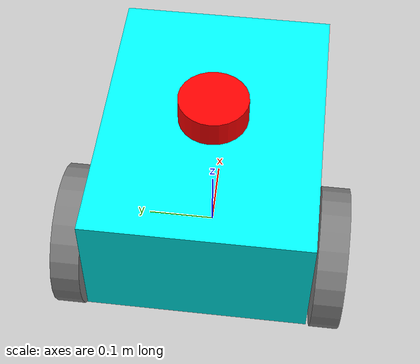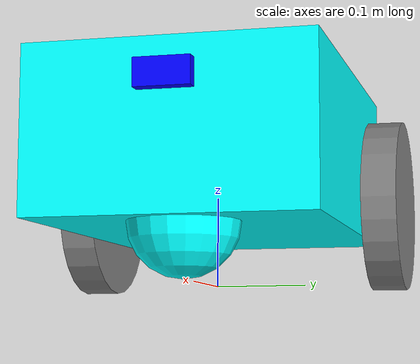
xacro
<?xml version="1.0"?>
<robot name="turtle_bot" xmlns:xacro="http://www.ros.org/wiki/xacro">

  <!-- Define robot constants - Optimized for smooth navigation -->
  <xacro:property name="base_width" value="0.31"/>
  <xacro:property name="base_length" value="0.42"/>
  <xacro:property name="base_height" value="0.18"/>
  <xacro:property name="wheel_radius" value="0.10"/>
  <xacro:property name="wheel_width" value="0.04"/>
  <xacro:property name="wheel_ygap" value="0.025"/>
  <xacro:property name="wheel_zoff" value="0.05"/>
  <xacro:property name="wheel_xoff" value="0.12"/>
  <xacro:property name="caster_xoff" value="0.14"/>

  <!-- Physics optimization constants -->
  <xacro:property name="base_mass" value="12.0"/>
  <xacro:property name="wheel_mass" value="0.8"/>
  <xacro:property name="caster_mass" value="0.3"/>
  <xacro:property name="lidar_mass" value="0.15"/>
  <xacro:property name="camera_mass" value="0.05"/>
  <xacro:property name="imu_mass" value="0.01"/>

  <!-- Define intertial property macros  -->
  <xacro:macro name="box_inertia" params="m w h d">
    <inertial>
      <origin xyz="0 0 0" rpy="${pi/2} 0 ${pi/2}"/>
      <mass value="${m}"/>
      <inertia ixx="${(m/12) * (h*h + d*d)}" ixy="0.0" ixz="0.0" iyy="${(m/12) * (w*w + d*d)}" iyz="0.0" izz="${(m/12) * (w*w + h*h)}"/>
    </inertial>
  </xacro:macro>

  <xacro:macro name="cylinder_inertia" params="m r h">
    <inertial>
      <origin xyz="0 0 0" rpy="${pi/2} 0 0" />
      <mass value="${m}"/>
      <inertia ixx="${(m/12) * (3*r*r + h*h)}" ixy = "0" ixz = "0" iyy="${(m/12) * (3*r*r + h*h)}" iyz = "0" izz="${(m/2) * (r*r)}"/>
    </inertial>
  </xacro:macro>

  <xacro:macro name="sphere_inertia" params="m r">
    <inertial>
      <mass value="${m}"/>
      <inertia ixx="${(2/5) * m * (r*r)}" ixy="0.0" ixz="0.0" iyy="${(2/5) * m * (r*r)}" iyz="0.0" izz="${(2/5) * m * (r*r)}"/>
    </inertial>
  </xacro:macro>

  <!-- Robot Base -->
  <link name="base_link">
    <visual>
      <geometry>
        <box size="${base_length} ${base_width} ${base_height}"/>
      </geometry>
      <material name="Cyan">
        <color rgba="0 1.0 1.0 1.0"/>
      </material>
    </visual>

    <collision>
      <geometry>
        <box size="${base_length} ${base_width} ${base_height}"/>
      </geometry>
    </collision>

    <xacro:box_inertia m="${base_mass}" w="${base_width}" d="${base_length}" h="${base_height}"/>
  </link>

  <!-- Robot Footprint -->
  <link name="base_footprint"/>

  <joint name="base_joint" type="fixed">
    <parent link="base_footprint"/>
    <child link="base_link"/>
    <origin xyz="0.0 0.0 ${(wheel_radius+wheel_zoff)}" rpy="0 0 0"/>
  </joint>

  <!-- Wheels -->
  <xacro:macro name="wheel" params="prefix x_reflect y_reflect">
    <link name="${prefix}_link">
      <visual>
        <origin xyz="0 0 0" rpy="${pi/2} 0 0"/>
        <geometry>
            <cylinder radius="${wheel_radius}" length="${wheel_width}"/>
        </geometry>
        <material name="Gray">
          <color rgba="0.5 0.5 0.5 1.0"/>
        </material>
      </visual>

      <collision>
        <origin xyz="0 0 0" rpy="${pi/2} 0 0"/>
        <geometry>
          <cylinder radius="${wheel_radius}" length="${wheel_width}"/>
        </geometry>
      </collision>

      <xacro:cylinder_inertia m="${wheel_mass}" r="${wheel_radius}" h="${wheel_width}"/>
    </link>

    <joint name="${prefix}_joint" type="continuous">
      <parent link="base_link"/>
      <child link="${prefix}_link"/>
      <origin xyz="${x_reflect*wheel_xoff} ${y_reflect*(base_width/2+wheel_ygap)} ${-wheel_zoff}" rpy="0 0 0"/>
      <axis xyz="0 1 0"/>
      <dynamics damping="0.2" friction="0.1"/>
      <limit effort="10.0" velocity="10.0"/>
    </joint>
  </xacro:macro>

  <xacro:wheel prefix="drivewhl_l" x_reflect="-1" y_reflect="1" />
  <xacro:wheel prefix="drivewhl_r" x_reflect="-1" y_reflect="-1" />

  <!-- Caster Wheel -->
  <link name="front_caster">
    <visual>
      <geometry>
        <sphere radius="${(wheel_radius+wheel_zoff-(base_height/2))}"/>
      </geometry>
      <material name="Cyan">
        <color rgba="0 1.0 1.0 1.0"/>
      </material>
    </visual>

    <collision>
      <origin xyz="0 0 0" rpy="0 0 0"/>
      <geometry>
        <sphere radius="${(wheel_radius+wheel_zoff-(base_height/2))}"/>
      </geometry>
    </collision>

    <xacro:sphere_inertia m="${caster_mass}" r="${(wheel_radius+wheel_zoff-(base_height/2))}"/>
  </link>

  <joint name="caster_joint" type="fixed">
    <parent link="base_link"/>
    <child link="front_caster"/>
    <origin xyz="${caster_xoff} 0.0 ${-(base_height/2)}" rpy="0 0 0"/>
  </joint>

  <!-- Lidar -->
  <link name="lidar_link">
    <visual>
      <origin xyz="0 0 0" rpy="0 0 0"/>
      <geometry>
        <cylinder radius="0.05" length="0.04"/>
      </geometry>
      <material name="Red">
        <color rgba="1.0 0 0 1.0"/>
      </material>
    </visual>

    <collision>
      <origin xyz="0 0 0" rpy="0 0 0"/>
      <geometry>
        <cylinder radius="0.05" length="0.04"/>
      </geometry>
    </collision>

    <xacro:cylinder_inertia m="${lidar_mass}" r="0.05" h="0.04"/>
  </link>

  <joint name="lidar_joint" type="fixed">
    <parent link="base_link"/>
    <child link="lidar_link"/>
    <origin xyz="0 0 ${base_height/2+0.02}" rpy="0 0 0"/>
  </joint>

  <!-- Camera -->
  <link name="camera_link">
    <visual>
      <origin xyz="0 0 0" rpy="0 0 0"/>
      <geometry>
        <box size="0.03 0.06 0.03"/>
      </geometry>
      <material name="Blue">
        <color rgba="0 0 1.0 1.0"/>
      </material>
    </visual>

    <collision>
      <origin xyz="0 0 0" rpy="0 0 0"/>
      <geometry>
        <box size="0.03 0.06 0.03"/>
      </geometry>
    </collision>

    <xacro:box_inertia m="${camera_mass}" w="0.06" d="0.03" h="0.03"/>
  </link>

  <joint name="camera_joint" type="fixed">
    <parent link="base_link"/>
    <child link="camera_link"/>
    <origin xyz="${base_length/2} 0 0.05" rpy="0 0 0"/>
  </joint>

  <!-- Camera optical frame -->
  <link name="camera_link_optical"/>

  <joint name="camera_optical_joint" type="fixed">
    <parent link="camera_link"/>
    <child link="camera_link_optical"/>
    <origin xyz="0 0 0" rpy="-1.5707 0 -1.5707"/>
  </joint>

  <!-- IMU -->
  <link name="imu_link">
    <visual>
      <origin xyz="0 0 0" rpy="0 0 0"/>
      <geometry>
        <box size="0.02 0.02 0.01"/>
      </geometry>
      <material name="Green">
        <color rgba="0 1.0 0 1.0"/>
      </material>
    </visual>

    <collision>
      <origin xyz="0 0 0" rpy="0 0 0"/>
      <geometry>
        <box size="0.02 0.02 0.01"/>
      </geometry>
    </collision>

    <xacro:box_inertia m="${imu_mass}" w="0.02" d="0.02" h="0.01"/>
  </link>

  <joint name="imu_joint" type="fixed">
    <parent link="base_link"/>
    <child link="imu_link"/>
    <origin xyz="0 0 0" rpy="0 0 0"/>
  </joint>

</robot>
